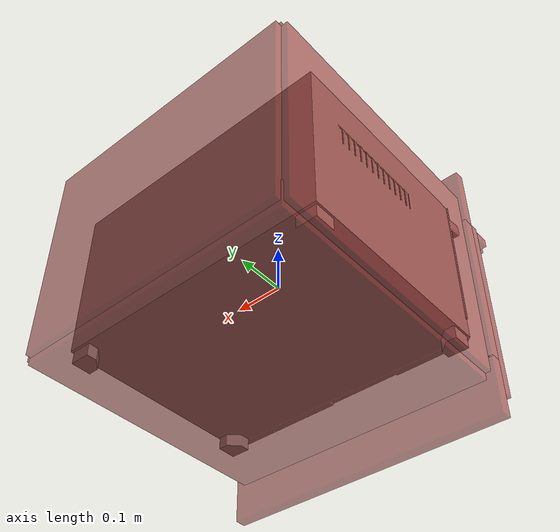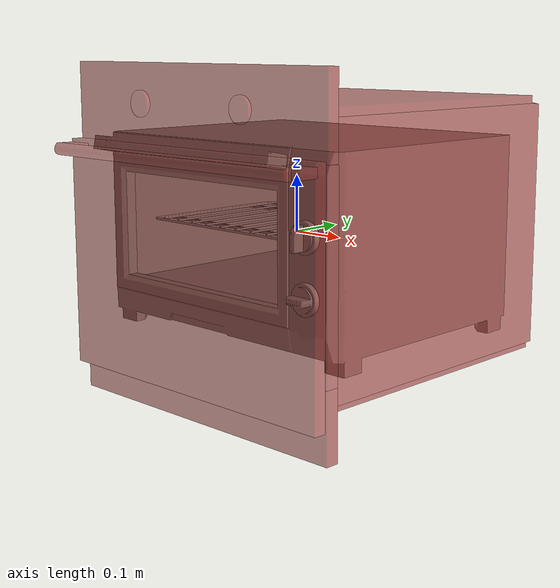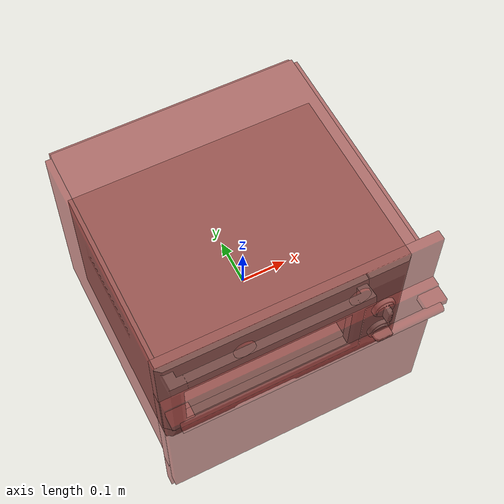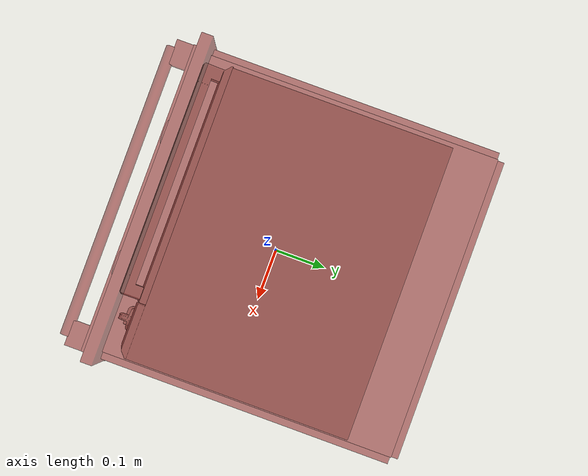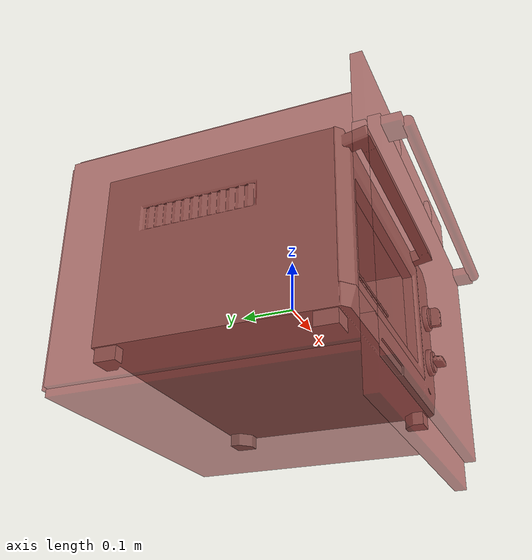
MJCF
<mujoco model="model">
  <compiler angle="radian"/>
  <asset>
    <mesh file="visuals/Body001.obj" name="Body001_vis"/>
    <mesh file="visuals/Door001.obj" name="Door001_vis"/>
    <mesh file="visuals/Door001_Clear.obj" name="Door001_Clear_vis"/>
    <mesh file="visuals/Knob001.obj" name="Knob001_vis"/>
    <mesh file="visuals/Knob002.obj" name="Knob002_vis"/>
    <mesh file="visuals/Shelf001.obj" name="Shelf001_vis"/>
    <texture file="visuals/T_BC001.png" name="Body001_material" type="2d"/>
    <material name="Body001_material" rgba="1 1 1 1.0" texture="Body001_material" shininess="0.5151148438453674" specular="0.33333333333333337"/>
    <texture file="visuals/T_BC001.png" name="Door001_material" type="2d"/>
    <material name="Door001_material" rgba="1 1 1 1.0" texture="Door001_material" shininess="0.5151148438453674" specular="0.33333333333333337"/>
    <material name="Door001_Clear_material" rgba="0.5 0.5 0.5 0.26543211936950684" shininess="0.4472135901451111" specular="0.33333333333333337"/>
    <texture file="visuals/T_BC001.png" name="Knob001_material" type="2d"/>
    <material name="Knob001_material" rgba="1 1 1 1.0" texture="Knob001_material" shininess="0.5151148438453674" specular="0.33333333333333337"/>
    <texture file="visuals/T_BC001.png" name="Knob002_material" type="2d"/>
    <material name="Knob002_material" rgba="1 1 1 1.0" texture="Knob002_material" shininess="0.5151148438453674" specular="0.33333333333333337"/>
    <texture file="visuals/T_BC001.png" name="Shelf001_material" type="2d"/>
    <material name="Shelf001_material" rgba="1 1 1 1.0" texture="Shelf001_material" shininess="0.5151148438453674" specular="0.33333333333333337"/>
  </asset>
  <default>
    <default class="visual">
      <geom conaffinity="0" contype="0" group="1" type="mesh"/>
    </default>
    <default class="collision">
      <geom group="0" rgba="0.5 0 0 0.5"/>
    </default>
    <default class="spawn">
      <geom group="0" rgba="1 1 1 0.5" contype="0" conaffinity="0"/>
      <site group="0" rgba="1 1 1 0.5"/>
    </default>
    <default class="region">
      <geom group="1" conaffinity="0" contype="0" rgba="0 1 0 0"/>
    </default>
  </default>
  <worldbody>
    <body>
      <body name="object">
        <geom mesh="Body001_vis" type="mesh" solimp="0.998 0.998 0.001" solref="0.001 1" density="100" friction="0.95 0.3 0.1" class="visual" material="Body001_material"/>
        <geom class="collision" type="box" pos="0.000181 -0.228975 0.226135" size="0.2946251928806305 0.010458193719387054 0.06878986209630966" quat="1.0 0.0 0.0 0.0"/>
        <geom class="collision" type="box" pos="-0.194004 0.021242 -0.016080" size="0.011263786815106869 0.11918754875659943 0.1274147927761078" quat="1.0 0.0 0.0 0.0"/>
        <geom class="collision" type="box" pos="-0.233401 0.021242 0.100073" size="0.03662951663136482 0.11918754875659943 0.011263417080044746" quat="1.0 0.0 0.0 0.0"/>
        <geom class="collision" type="box" pos="-0.233401 0.021242 -0.132391" size="0.03662951663136482 0.11918754875659943 0.011263417080044746" quat="1.0 0.0 0.0 0.0"/>
        <geom class="collision" type="box" pos="0.191108 0.021243 -0.016080" size="0.013835121877491474 0.11918764561414719 0.1274147927761078" quat="1.0 0.0 0.0 0.0"/>
        <geom class="collision" type="box" pos="0.233075 0.021242 0.100073" size="0.036630406975746155 0.11918782442808151 0.011263416148722172" quat="1.0 0.0 0.0 0.0"/>
        <geom class="collision" type="box" pos="0.233075 0.021242 -0.132391" size="0.036630406975746155 0.11918782442808151 0.011263416148722172" quat="1.0 0.0 0.0 0.0"/>
        <geom class="collision" type="box" pos="-0.248653 0.046478 0.008223" size="0.03768932819366455 0.2640433609485626 0.2136763632297516" quat="1.0 0.0 0.0 0.0"/>
        <geom class="collision" type="box" pos="-0.000002 0.276226 0.008223" size="0.27266040444374084 0.04797462001442909 0.21367639303207397" quat="1.0 0.0 0.0 0.0"/>
        <geom class="collision" type="box" pos="-0.000002 0.046477 0.190876" size="0.27264153957366943 0.2640235722064972 0.04470451548695564" quat="1.0 0.0 0.0 0.0"/>
        <geom class="collision" type="box" pos="0.247927 0.046479 0.008223" size="0.0384102426469326 0.2640433609485626 0.2136763632297516" quat="1.0 0.0 0.0 0.0"/>
        <geom class="collision" type="box" pos="-0.000002 0.046479 -0.192091" size="0.27563008666038513 0.2671108543872833 0.02704073302447796" quat="1.0 0.0 0.0 0.0"/>
        <geom class="collision" type="box" pos="0.000181 -0.228024 -0.232053" size="0.29462775588035583 0.011409354396164417 0.058970969170331955" quat="1.0 0.0 0.0 0.0"/>
        <geom class="collision" type="box" pos="-0.251253 -0.228024 -0.010753" size="0.04319363459944725 0.01140936091542244 0.16663116216659546" quat="1.0 0.0 0.0 0.0"/>
        <geom class="collision" type="box" pos="0.251516 -0.228024 -0.010753" size="0.043193668127059937 0.011409367434680462 0.1666313111782074" quat="1.0 0.0 0.0 0.0"/>
        <body name="Door001">
          <joint axis="1.0 0.0 0.0" pos="-0.000000 -0.245479 -0.292162" limited="true" name="Door001_joint" range="0.0 1.5707963267948966" type="hinge" damping="1" frictionloss="1" armature=".01" stiffness="2.4" springref="-0.8"/>
          <geom mesh="Door001_vis" type="mesh" solimp="0.998 0.998 0.001" solref="0.001 1" density="100" friction="0.95 0.3 0.1" class="visual" material="Door001_material"/>
          <geom class="collision" type="cylinder" pos="-0.000022 -0.299941 0.147723" size="0.01062837801873684 0.27646785974502563" quat="0.49999818205833435 -0.5 0.5000017881393433 -0.5"/>
          <geom class="collision" type="box" pos="0.269189 -0.277145 0.148070" size="0.023455040529370308 0.017883628606796265 0.008192352950572968" quat="1.0 0.0 0.0 0.0"/>
          <geom class="collision" type="box" pos="-0.268566 -0.277145 0.148070" size="0.023569418117403984 0.017883628606796265 0.008192352950572968" quat="1.0 0.0 0.0 0.0"/>
          <geom class="collision" type="box" pos="0.000031 -0.251975 -0.038460" size="0.2923111915588379 0.010548513382673264 0.2005469650030136" quat="1.0 0.0 0.0 0.0"/>
          <body name="Door001_Clear">
            <geom mesh="Door001_Clear_vis" type="mesh" solimp="0.998 0.998 0.001" solref="0.001 1" density="100" friction="0.95 0.3 0.1" class="visual" material="Door001_Clear_material"/>
          </body>
        </body>
        <body name="Knob001">
          <joint axis="0.0 1.0 0.0" pos="-0.119901 -0.246716 0.228159" limited="true" name="Knob001_joint" range="0.0 4.886921905584122" type="hinge" damping="1" frictionloss="1" armature=".01" stiffness="0.05"/>
          <geom mesh="Knob001_vis" type="mesh" solimp="0.998 0.998 0.001" solref="0.001 1" density="100" friction="0.95 0.3 0.1" class="visual" material="Knob001_material"/>
          <geom class="collision" type="cylinder" pos="-0.120223 -0.245689 0.228161" size="0.02225540392100811 0.0028522645588964224" quat="0.7071067094802856 -0.7071068286895752 -1.5700929612083792e-16 -2.2148510003422914e-23"/>
        </body>
        <body name="Knob002">
          <joint axis="0.0 -1.0 0.0" pos="0.119901 -0.246716 0.228161" limited="true" name="Knob002_joint" range="0.0 4.1887902047863905" type="hinge" damping="1" frictionloss="1" armature=".01" stiffness="0.05"/>
          <geom mesh="Knob002_vis" type="mesh" solimp="0.998 0.998 0.001" solref="0.001 1" density="100" friction="0.95 0.3 0.1" class="visual" material="Knob002_material"/>
          <geom class="collision" type="cylinder" pos="0.119901 -0.245689 0.228161" size="0.02225540392100811 0.0028522645588964224" quat="0.7071067094802856 -0.7071068286895752 -1.5700929612083792e-16 -2.2148510003422914e-23"/>
        </body>
        <body name="Shelf001">
          <joint axis="0.0 -1.0 0.0" pos="-0.001241 0.020813 -0.037047" limited="true" name="Shelf001_joint" range="0.0 0.4" type="slide" damping="1" frictionloss="1" armature=".01" stiffness="0.05"/>
          <geom mesh="Shelf001_vis" type="mesh" solimp="0.998 0.998 0.001" solref="0.001 1" density="100" friction="0.95 0.3 0.1" class="visual" material="Shelf001_material"/>
          <geom class="collision" type="box" pos="-0.002176 0.021242 -0.022393" size="0.17784322798252106 0.1108129620552063 0.01004780363291502" quat="1.0 0.0 0.0 0.0"/>
        </body>
        <geom class="region" name="reg_main" type="box" pos="0.0 0.03270450000000001 0.0" size="0.295128 0.2778175 0.294359"/>
        <geom class="region" name="reg_int" type="box" pos="-0.0035110000000000002 0.022281499999999996 -0.0172215" size="0.22269 0.24927549999999998 0.1593675"/>
      </body>
    </body>
  </worldbody>
  <actuator>
    <motor name="Door001_joint_actuator" joint="Door001_joint" gear="50"/>
    <motor name="Knob001_joint_actuator" joint="Knob001_joint" gear="50"/>
    <motor name="Knob002_joint_actuator" joint="Knob002_joint" gear="50"/>
    <motor name="Shelf001_joint_actuator" joint="Shelf001_joint" gear="50"/>
  </actuator>
</mujoco>
